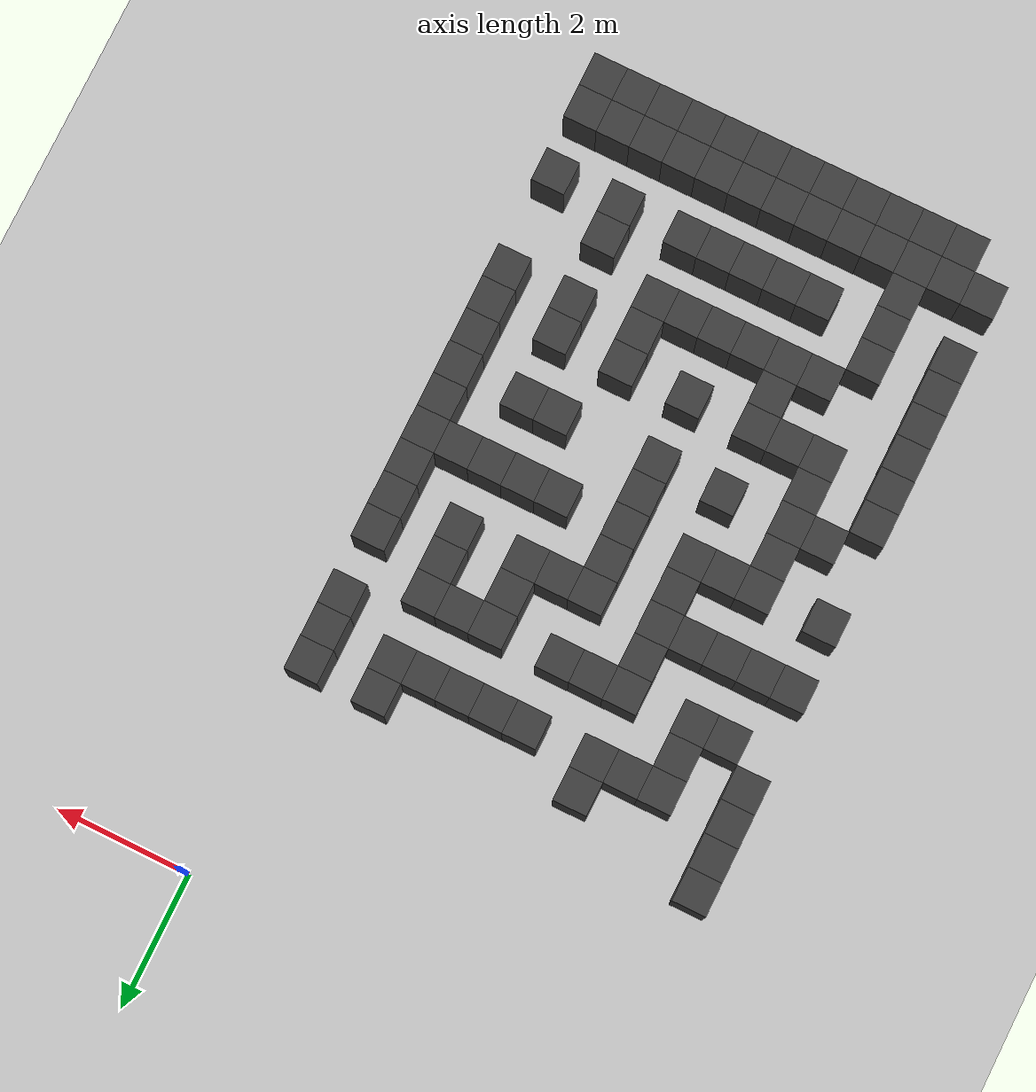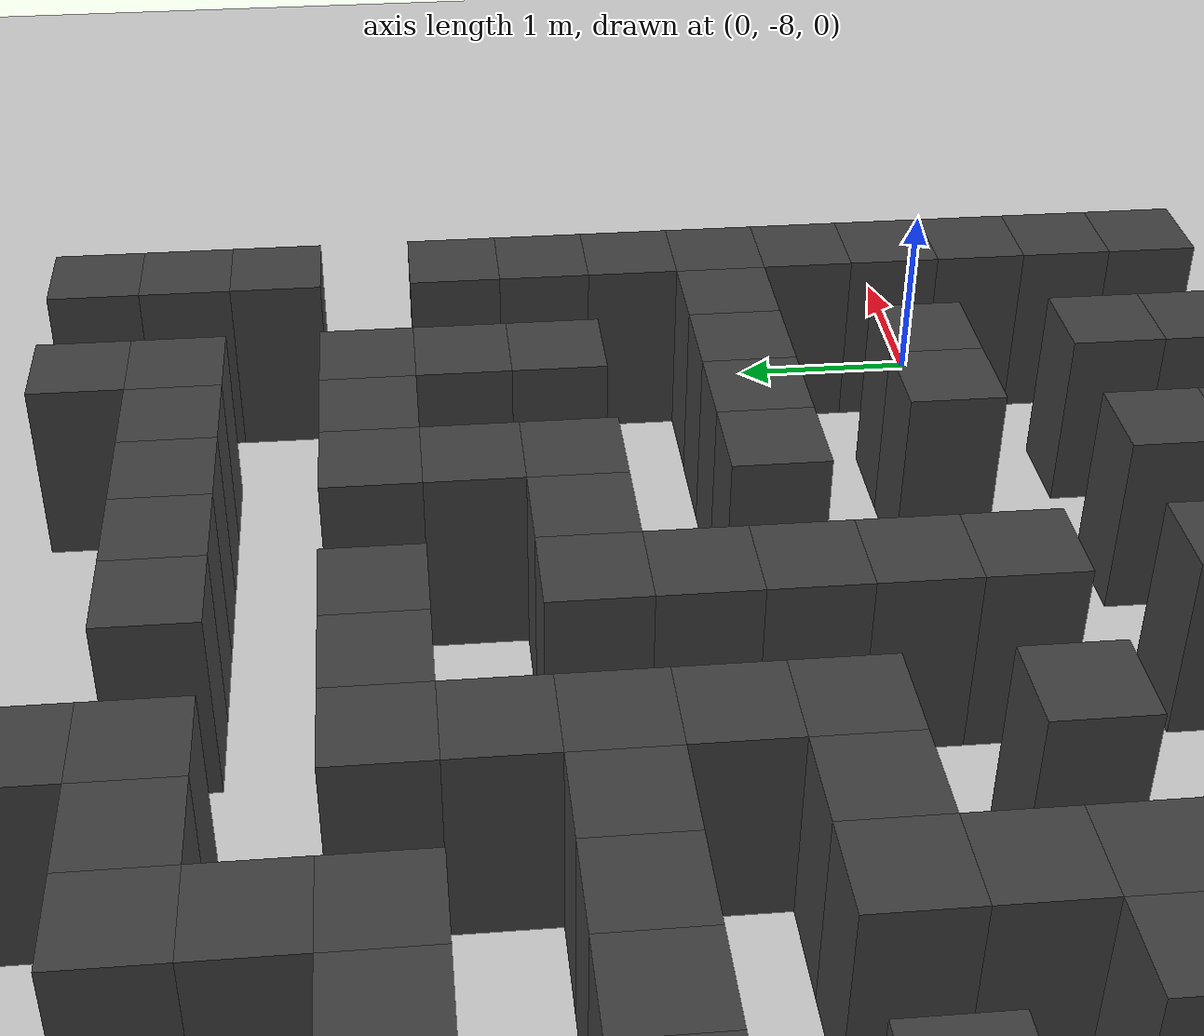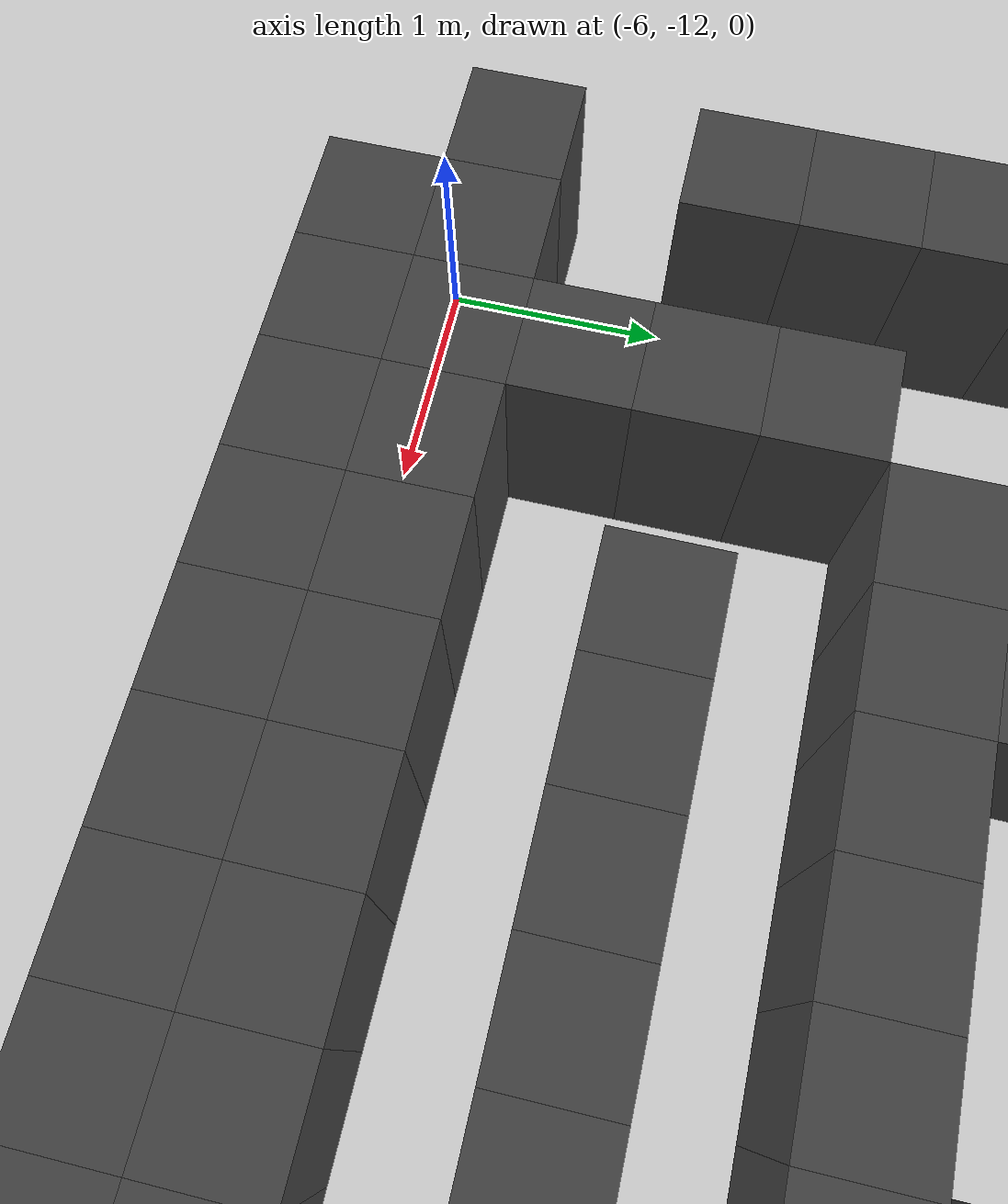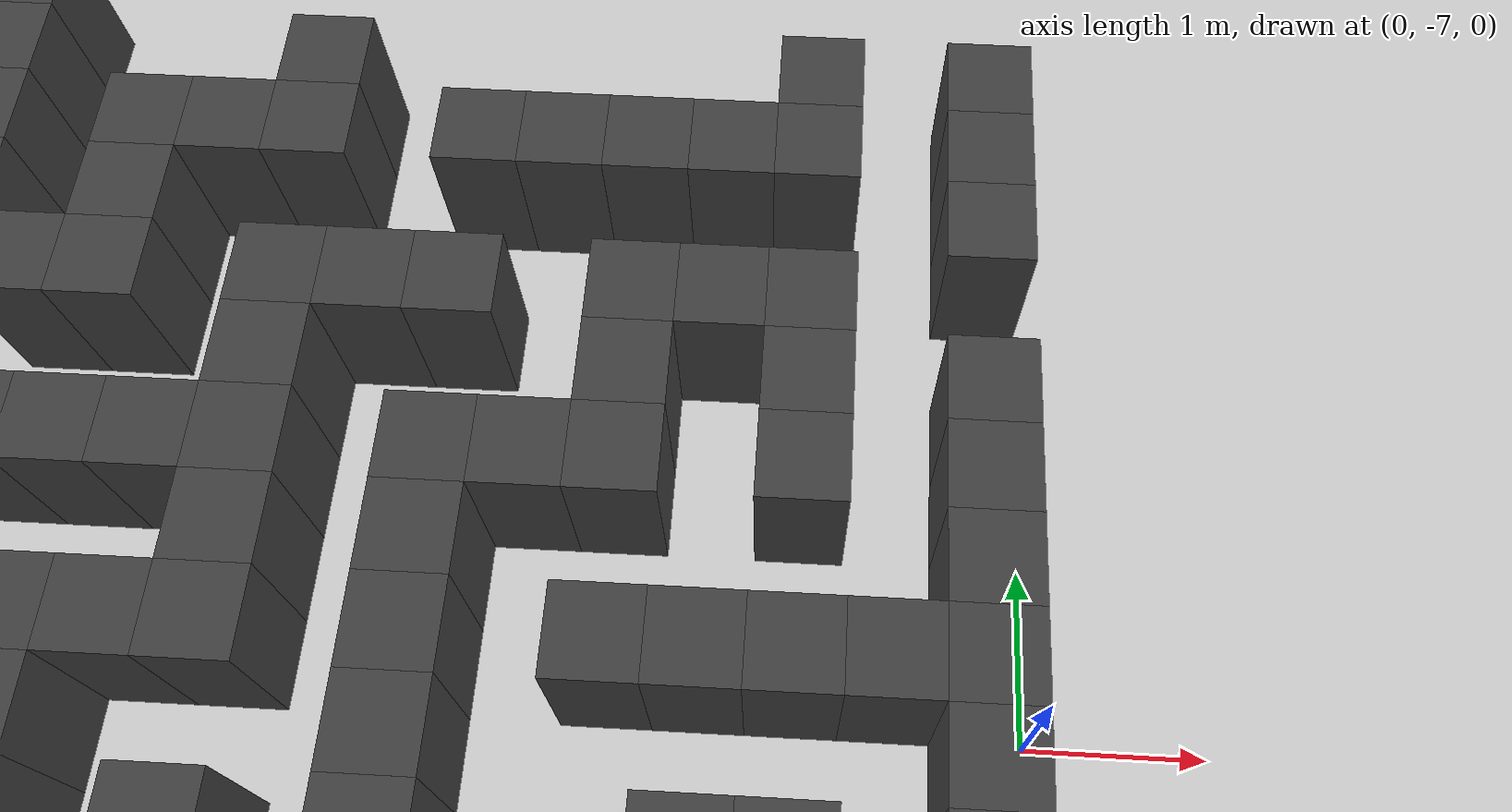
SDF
<sdf version="1.7">
 <world name="map_16603">
  <model name="ground_plane">
   <static>true</static>
   <link name="link">
    <collision name="collision">
     <geometry><plane><normal>0 0 1</normal><size>200 200</size></plane></geometry>
    </collision>
    <visual name="visual">
     <geometry><plane><normal>0 0 1</normal><size>200 200</size></plane></geometry>
     <material><ambient>0.8 0.8 0.8 1</ambient><diffuse>0.8 0.8 0.8 1</diffuse></material>
    </visual>
   </link>
  </model>
  <model name="maze_environment">
   <static>true</static>
   <link name="wall_737">
    <pose>-6.250 -2.750 0.500 0 0 0</pose>
    <collision name="col"><geometry><box><size>0.5 0.5 1.0</size></box></geometry></collision>
    <visual name="vis">
     <geometry><box><size>0.5 0.5 1.0</size></box></geometry>
     <material><ambient>0.15 0.15 0.15 1</ambient><diffuse>0.25 0.25 0.25 1</diffuse></material>
    </visual>
   </link>
   <link name="wall_769">
    <pose>-6.250 -3.250 0.500 0 0 0</pose>
    <collision name="col"><geometry><box><size>0.5 0.5 1.0</size></box></geometry></collision>
    <visual name="vis">
     <geometry><box><size>0.5 0.5 1.0</size></box></geometry>
     <material><ambient>0.15 0.15 0.15 1</ambient><diffuse>0.25 0.25 0.25 1</diffuse></material>
    </visual>
   </link>
   <link name="wall_770">
    <pose>-4.250 -3.250 0.500 0 0 0</pose>
    <collision name="col"><geometry><box><size>0.5 0.5 1.0</size></box></geometry></collision>
    <visual name="vis">
     <geometry><box><size>0.5 0.5 1.0</size></box></geometry>
     <material><ambient>0.15 0.15 0.15 1</ambient><diffuse>0.25 0.25 0.25 1</diffuse></material>
    </visual>
   </link>
   <link name="wall_771">
    <pose>-1.250 -3.250 0.500 0 0 0</pose>
    <collision name="col"><geometry><box><size>0.5 0.5 1.0</size></box></geometry></collision>
    <visual name="vis">
     <geometry><box><size>0.5 0.5 1.0</size></box></geometry>
     <material><ambient>0.15 0.15 0.15 1</ambient><diffuse>0.25 0.25 0.25 1</diffuse></material>
    </visual>
   </link>
   <link name="wall_772">
    <pose>-0.250 -3.250 0.500 0 0 0</pose>
    <collision name="col"><geometry><box><size>0.5 0.5 1.0</size></box></geometry></collision>
    <visual name="vis">
     <geometry><box><size>0.5 0.5 1.0</size></box></geometry>
     <material><ambient>0.15 0.15 0.15 1</ambient><diffuse>0.25 0.25 0.25 1</diffuse></material>
    </visual>
   </link>
   <link name="wall_783">
    <pose>-6.250 -3.750 0.500 0 0 0</pose>
    <collision name="col"><geometry><box><size>0.5 0.5 1.0</size></box></geometry></collision>
    <visual name="vis">
     <geometry><box><size>0.5 0.5 1.0</size></box></geometry>
     <material><ambient>0.15 0.15 0.15 1</ambient><diffuse>0.25 0.25 0.25 1</diffuse></material>
    </visual>
   </link>
   <link name="wall_784">
    <pose>-5.250 -3.750 0.500 0 0 0</pose>
    <collision name="col"><geometry><box><size>0.5 0.5 1.0</size></box></geometry></collision>
    <visual name="vis">
     <geometry><box><size>0.5 0.5 1.0</size></box></geometry>
     <material><ambient>0.15 0.15 0.15 1</ambient><diffuse>0.25 0.25 0.25 1</diffuse></material>
    </visual>
   </link>
   <link name="wall_785">
    <pose>-4.750 -3.750 0.500 0 0 0</pose>
    <collision name="col"><geometry><box><size>0.5 0.5 1.0</size></box></geometry></collision>
    <visual name="vis">
     <geometry><box><size>0.5 0.5 1.0</size></box></geometry>
     <material><ambient>0.15 0.15 0.15 1</ambient><diffuse>0.25 0.25 0.25 1</diffuse></material>
    </visual>
   </link>
   <link name="wall_786">
    <pose>-4.250 -3.750 0.500 0 0 0</pose>
    <collision name="col"><geometry><box><size>0.5 0.5 1.0</size></box></geometry></collision>
    <visual name="vis">
     <geometry><box><size>0.5 0.5 1.0</size></box></geometry>
     <material><ambient>0.15 0.15 0.15 1</ambient><diffuse>0.25 0.25 0.25 1</diffuse></material>
    </visual>
   </link>
   <link name="wall_787">
    <pose>-3.250 -3.750 0.500 0 0 0</pose>
    <collision name="col"><geometry><box><size>0.5 0.5 1.0</size></box></geometry></collision>
    <visual name="vis">
     <geometry><box><size>0.5 0.5 1.0</size></box></geometry>
     <material><ambient>0.15 0.15 0.15 1</ambient><diffuse>0.25 0.25 0.25 1</diffuse></material>
    </visual>
   </link>
   <link name="wall_788">
    <pose>-2.750 -3.750 0.500 0 0 0</pose>
    <collision name="col"><geometry><box><size>0.5 0.5 1.0</size></box></geometry></collision>
    <visual name="vis">
     <geometry><box><size>0.5 0.5 1.0</size></box></geometry>
     <material><ambient>0.15 0.15 0.15 1</ambient><diffuse>0.25 0.25 0.25 1</diffuse></material>
    </visual>
   </link>
   <link name="wall_789">
    <pose>-2.250 -3.750 0.500 0 0 0</pose>
    <collision name="col"><geometry><box><size>0.5 0.5 1.0</size></box></geometry></collision>
    <visual name="vis">
     <geometry><box><size>0.5 0.5 1.0</size></box></geometry>
     <material><ambient>0.15 0.15 0.15 1</ambient><diffuse>0.25 0.25 0.25 1</diffuse></material>
    </visual>
   </link>
   <link name="wall_790">
    <pose>-1.750 -3.750 0.500 0 0 0</pose>
    <collision name="col"><geometry><box><size>0.5 0.5 1.0</size></box></geometry></collision>
    <visual name="vis">
     <geometry><box><size>0.5 0.5 1.0</size></box></geometry>
     <material><ambient>0.15 0.15 0.15 1</ambient><diffuse>0.25 0.25 0.25 1</diffuse></material>
    </visual>
   </link>
   <link name="wall_791">
    <pose>-1.250 -3.750 0.500 0 0 0</pose>
    <collision name="col"><geometry><box><size>0.5 0.5 1.0</size></box></geometry></collision>
    <visual name="vis">
     <geometry><box><size>0.5 0.5 1.0</size></box></geometry>
     <material><ambient>0.15 0.15 0.15 1</ambient><diffuse>0.25 0.25 0.25 1</diffuse></material>
    </visual>
   </link>
   <link name="wall_792">
    <pose>-0.250 -3.750 0.500 0 0 0</pose>
    <collision name="col"><geometry><box><size>0.5 0.5 1.0</size></box></geometry></collision>
    <visual name="vis">
     <geometry><box><size>0.5 0.5 1.0</size></box></geometry>
     <material><ambient>0.15 0.15 0.15 1</ambient><diffuse>0.25 0.25 0.25 1</diffuse></material>
    </visual>
   </link>
   <link name="wall_815">
    <pose>-6.250 -4.250 0.500 0 0 0</pose>
    <collision name="col"><geometry><box><size>0.5 0.5 1.0</size></box></geometry></collision>
    <visual name="vis">
     <geometry><box><size>0.5 0.5 1.0</size></box></geometry>
     <material><ambient>0.15 0.15 0.15 1</ambient><diffuse>0.25 0.25 0.25 1</diffuse></material>
    </visual>
   </link>
   <link name="wall_816">
    <pose>-5.250 -4.250 0.500 0 0 0</pose>
    <collision name="col"><geometry><box><size>0.5 0.5 1.0</size></box></geometry></collision>
    <visual name="vis">
     <geometry><box><size>0.5 0.5 1.0</size></box></geometry>
     <material><ambient>0.15 0.15 0.15 1</ambient><diffuse>0.25 0.25 0.25 1</diffuse></material>
    </visual>
   </link>
   <link name="wall_817">
    <pose>-0.250 -4.250 0.500 0 0 0</pose>
    <collision name="col"><geometry><box><size>0.5 0.5 1.0</size></box></geometry></collision>
    <visual name="vis">
     <geometry><box><size>0.5 0.5 1.0</size></box></geometry>
     <material><ambient>0.15 0.15 0.15 1</ambient><diffuse>0.25 0.25 0.25 1</diffuse></material>
    </visual>
   </link>
   <link name="wall_834">
    <pose>-5.750 -4.750 0.500 0 0 0</pose>
    <collision name="col"><geometry><box><size>0.5 0.5 1.0</size></box></geometry></collision>
    <visual name="vis">
     <geometry><box><size>0.5 0.5 1.0</size></box></geometry>
     <material><ambient>0.15 0.15 0.15 1</ambient><diffuse>0.25 0.25 0.25 1</diffuse></material>
    </visual>
   </link>
   <link name="wall_835">
    <pose>-5.250 -4.750 0.500 0 0 0</pose>
    <collision name="col"><geometry><box><size>0.5 0.5 1.0</size></box></geometry></collision>
    <visual name="vis">
     <geometry><box><size>0.5 0.5 1.0</size></box></geometry>
     <material><ambient>0.15 0.15 0.15 1</ambient><diffuse>0.25 0.25 0.25 1</diffuse></material>
    </visual>
   </link>
   <link name="wall_836">
    <pose>-4.250 -4.750 0.500 0 0 0</pose>
    <collision name="col"><geometry><box><size>0.5 0.5 1.0</size></box></geometry></collision>
    <visual name="vis">
     <geometry><box><size>0.5 0.5 1.0</size></box></geometry>
     <material><ambient>0.15 0.15 0.15 1</ambient><diffuse>0.25 0.25 0.25 1</diffuse></material>
    </visual>
   </link>
   <link name="wall_837">
    <pose>-3.750 -4.750 0.500 0 0 0</pose>
    <collision name="col"><geometry><box><size>0.5 0.5 1.0</size></box></geometry></collision>
    <visual name="vis">
     <geometry><box><size>0.5 0.5 1.0</size></box></geometry>
     <material><ambient>0.15 0.15 0.15 1</ambient><diffuse>0.25 0.25 0.25 1</diffuse></material>
    </visual>
   </link>
   <link name="wall_838">
    <pose>-3.250 -4.750 0.500 0 0 0</pose>
    <collision name="col"><geometry><box><size>0.5 0.5 1.0</size></box></geometry></collision>
    <visual name="vis">
     <geometry><box><size>0.5 0.5 1.0</size></box></geometry>
     <material><ambient>0.15 0.15 0.15 1</ambient><diffuse>0.25 0.25 0.25 1</diffuse></material>
    </visual>
   </link>
   <link name="wall_839">
    <pose>-2.250 -4.750 0.500 0 0 0</pose>
    <collision name="col"><geometry><box><size>0.5 0.5 1.0</size></box></geometry></collision>
    <visual name="vis">
     <geometry><box><size>0.5 0.5 1.0</size></box></geometry>
     <material><ambient>0.15 0.15 0.15 1</ambient><diffuse>0.25 0.25 0.25 1</diffuse></material>
    </visual>
   </link>
   <link name="wall_840">
    <pose>-1.750 -4.750 0.500 0 0 0</pose>
    <collision name="col"><geometry><box><size>0.5 0.5 1.0</size></box></geometry></collision>
    <visual name="vis">
     <geometry><box><size>0.5 0.5 1.0</size></box></geometry>
     <material><ambient>0.15 0.15 0.15 1</ambient><diffuse>0.25 0.25 0.25 1</diffuse></material>
    </visual>
   </link>
   <link name="wall_841">
    <pose>-1.250 -4.750 0.500 0 0 0</pose>
    <collision name="col"><geometry><box><size>0.5 0.5 1.0</size></box></geometry></collision>
    <visual name="vis">
     <geometry><box><size>0.5 0.5 1.0</size></box></geometry>
     <material><ambient>0.15 0.15 0.15 1</ambient><diffuse>0.25 0.25 0.25 1</diffuse></material>
    </visual>
   </link>
   <link name="wall_861">
    <pose>-4.250 -5.250 0.500 0 0 0</pose>
    <collision name="col"><geometry><box><size>0.5 0.5 1.0</size></box></geometry></collision>
    <visual name="vis">
     <geometry><box><size>0.5 0.5 1.0</size></box></geometry>
     <material><ambient>0.15 0.15 0.15 1</ambient><diffuse>0.25 0.25 0.25 1</diffuse></material>
    </visual>
   </link>
   <link name="wall_862">
    <pose>-2.250 -5.250 0.500 0 0 0</pose>
    <collision name="col"><geometry><box><size>0.5 0.5 1.0</size></box></geometry></collision>
    <visual name="vis">
     <geometry><box><size>0.5 0.5 1.0</size></box></geometry>
     <material><ambient>0.15 0.15 0.15 1</ambient><diffuse>0.25 0.25 0.25 1</diffuse></material>
    </visual>
   </link>
   <link name="wall_863">
    <pose>-1.250 -5.250 0.500 0 0 0</pose>
    <collision name="col"><geometry><box><size>0.5 0.5 1.0</size></box></geometry></collision>
    <visual name="vis">
     <geometry><box><size>0.5 0.5 1.0</size></box></geometry>
     <material><ambient>0.15 0.15 0.15 1</ambient><diffuse>0.25 0.25 0.25 1</diffuse></material>
    </visual>
   </link>
   <link name="wall_864">
    <pose>-0.250 -5.250 0.500 0 0 0</pose>
    <collision name="col"><geometry><box><size>0.5 0.5 1.0</size></box></geometry></collision>
    <visual name="vis">
     <geometry><box><size>0.5 0.5 1.0</size></box></geometry>
     <material><ambient>0.15 0.15 0.15 1</ambient><diffuse>0.25 0.25 0.25 1</diffuse></material>
    </visual>
   </link>
   <link name="wall_879">
    <pose>-6.250 -5.750 0.500 0 0 0</pose>
    <collision name="col"><geometry><box><size>0.5 0.5 1.0</size></box></geometry></collision>
    <visual name="vis">
     <geometry><box><size>0.5 0.5 1.0</size></box></geometry>
     <material><ambient>0.15 0.15 0.15 1</ambient><diffuse>0.25 0.25 0.25 1</diffuse></material>
    </visual>
   </link>
   <link name="wall_880">
    <pose>-5.750 -5.750 0.500 0 0 0</pose>
    <collision name="col"><geometry><box><size>0.5 0.5 1.0</size></box></geometry></collision>
    <visual name="vis">
     <geometry><box><size>0.5 0.5 1.0</size></box></geometry>
     <material><ambient>0.15 0.15 0.15 1</ambient><diffuse>0.25 0.25 0.25 1</diffuse></material>
    </visual>
   </link>
   <link name="wall_881">
    <pose>-5.250 -5.750 0.500 0 0 0</pose>
    <collision name="col"><geometry><box><size>0.5 0.5 1.0</size></box></geometry></collision>
    <visual name="vis">
     <geometry><box><size>0.5 0.5 1.0</size></box></geometry>
     <material><ambient>0.15 0.15 0.15 1</ambient><diffuse>0.25 0.25 0.25 1</diffuse></material>
    </visual>
   </link>
   <link name="wall_882">
    <pose>-4.750 -5.750 0.500 0 0 0</pose>
    <collision name="col"><geometry><box><size>0.5 0.5 1.0</size></box></geometry></collision>
    <visual name="vis">
     <geometry><box><size>0.5 0.5 1.0</size></box></geometry>
     <material><ambient>0.15 0.15 0.15 1</ambient><diffuse>0.25 0.25 0.25 1</diffuse></material>
    </visual>
   </link>
   <link name="wall_883">
    <pose>-4.250 -5.750 0.500 0 0 0</pose>
    <collision name="col"><geometry><box><size>0.5 0.5 1.0</size></box></geometry></collision>
    <visual name="vis">
     <geometry><box><size>0.5 0.5 1.0</size></box></geometry>
     <material><ambient>0.15 0.15 0.15 1</ambient><diffuse>0.25 0.25 0.25 1</diffuse></material>
    </visual>
   </link>
   <link name="wall_884">
    <pose>-3.250 -5.750 0.500 0 0 0</pose>
    <collision name="col"><geometry><box><size>0.5 0.5 1.0</size></box></geometry></collision>
    <visual name="vis">
     <geometry><box><size>0.5 0.5 1.0</size></box></geometry>
     <material><ambient>0.15 0.15 0.15 1</ambient><diffuse>0.25 0.25 0.25 1</diffuse></material>
    </visual>
   </link>
   <link name="wall_885">
    <pose>-2.750 -5.750 0.500 0 0 0</pose>
    <collision name="col"><geometry><box><size>0.5 0.5 1.0</size></box></geometry></collision>
    <visual name="vis">
     <geometry><box><size>0.5 0.5 1.0</size></box></geometry>
     <material><ambient>0.15 0.15 0.15 1</ambient><diffuse>0.25 0.25 0.25 1</diffuse></material>
    </visual>
   </link>
   <link name="wall_886">
    <pose>-2.250 -5.750 0.500 0 0 0</pose>
    <collision name="col"><geometry><box><size>0.5 0.5 1.0</size></box></geometry></collision>
    <visual name="vis">
     <geometry><box><size>0.5 0.5 1.0</size></box></geometry>
     <material><ambient>0.15 0.15 0.15 1</ambient><diffuse>0.25 0.25 0.25 1</diffuse></material>
    </visual>
   </link>
   <link name="wall_887">
    <pose>-1.250 -5.750 0.500 0 0 0</pose>
    <collision name="col"><geometry><box><size>0.5 0.5 1.0</size></box></geometry></collision>
    <visual name="vis">
     <geometry><box><size>0.5 0.5 1.0</size></box></geometry>
     <material><ambient>0.15 0.15 0.15 1</ambient><diffuse>0.25 0.25 0.25 1</diffuse></material>
    </visual>
   </link>
   <link name="wall_888">
    <pose>-0.250 -5.750 0.500 0 0 0</pose>
    <collision name="col"><geometry><box><size>0.5 0.5 1.0</size></box></geometry></collision>
    <visual name="vis">
     <geometry><box><size>0.5 0.5 1.0</size></box></geometry>
     <material><ambient>0.15 0.15 0.15 1</ambient><diffuse>0.25 0.25 0.25 1</diffuse></material>
    </visual>
   </link>
   <link name="wall_910">
    <pose>-4.250 -6.250 0.500 0 0 0</pose>
    <collision name="col"><geometry><box><size>0.5 0.5 1.0</size></box></geometry></collision>
    <visual name="vis">
     <geometry><box><size>0.5 0.5 1.0</size></box></geometry>
     <material><ambient>0.15 0.15 0.15 1</ambient><diffuse>0.25 0.25 0.25 1</diffuse></material>
    </visual>
   </link>
   <link name="wall_911">
    <pose>-3.250 -6.250 0.500 0 0 0</pose>
    <collision name="col"><geometry><box><size>0.5 0.5 1.0</size></box></geometry></collision>
    <visual name="vis">
     <geometry><box><size>0.5 0.5 1.0</size></box></geometry>
     <material><ambient>0.15 0.15 0.15 1</ambient><diffuse>0.25 0.25 0.25 1</diffuse></material>
    </visual>
   </link>
   <link name="wall_912">
    <pose>-0.250 -6.250 0.500 0 0 0</pose>
    <collision name="col"><geometry><box><size>0.5 0.5 1.0</size></box></geometry></collision>
    <visual name="vis">
     <geometry><box><size>0.5 0.5 1.0</size></box></geometry>
     <material><ambient>0.15 0.15 0.15 1</ambient><diffuse>0.25 0.25 0.25 1</diffuse></material>
    </visual>
   </link>
   <link name="wall_931">
    <pose>-6.250 -6.750 0.500 0 0 0</pose>
    <collision name="col"><geometry><box><size>0.5 0.5 1.0</size></box></geometry></collision>
    <visual name="vis">
     <geometry><box><size>0.5 0.5 1.0</size></box></geometry>
     <material><ambient>0.15 0.15 0.15 1</ambient><diffuse>0.25 0.25 0.25 1</diffuse></material>
    </visual>
   </link>
   <link name="wall_932">
    <pose>-5.250 -6.750 0.500 0 0 0</pose>
    <collision name="col"><geometry><box><size>0.5 0.5 1.0</size></box></geometry></collision>
    <visual name="vis">
     <geometry><box><size>0.5 0.5 1.0</size></box></geometry>
     <material><ambient>0.15 0.15 0.15 1</ambient><diffuse>0.25 0.25 0.25 1</diffuse></material>
    </visual>
   </link>
   <link name="wall_933">
    <pose>-4.750 -6.750 0.500 0 0 0</pose>
    <collision name="col"><geometry><box><size>0.5 0.5 1.0</size></box></geometry></collision>
    <visual name="vis">
     <geometry><box><size>0.5 0.5 1.0</size></box></geometry>
     <material><ambient>0.15 0.15 0.15 1</ambient><diffuse>0.25 0.25 0.25 1</diffuse></material>
    </visual>
   </link>
   <link name="wall_934">
    <pose>-4.250 -6.750 0.500 0 0 0</pose>
    <collision name="col"><geometry><box><size>0.5 0.5 1.0</size></box></geometry></collision>
    <visual name="vis">
     <geometry><box><size>0.5 0.5 1.0</size></box></geometry>
     <material><ambient>0.15 0.15 0.15 1</ambient><diffuse>0.25 0.25 0.25 1</diffuse></material>
    </visual>
   </link>
   <link name="wall_935">
    <pose>-3.250 -6.750 0.500 0 0 0</pose>
    <collision name="col"><geometry><box><size>0.5 0.5 1.0</size></box></geometry></collision>
    <visual name="vis">
     <geometry><box><size>0.5 0.5 1.0</size></box></geometry>
     <material><ambient>0.15 0.15 0.15 1</ambient><diffuse>0.25 0.25 0.25 1</diffuse></material>
    </visual>
   </link>
   <link name="wall_936">
    <pose>-2.250 -6.750 0.500 0 0 0</pose>
    <collision name="col"><geometry><box><size>0.5 0.5 1.0</size></box></geometry></collision>
    <visual name="vis">
     <geometry><box><size>0.5 0.5 1.0</size></box></geometry>
     <material><ambient>0.15 0.15 0.15 1</ambient><diffuse>0.25 0.25 0.25 1</diffuse></material>
    </visual>
   </link>
   <link name="wall_937">
    <pose>-1.750 -6.750 0.500 0 0 0</pose>
    <collision name="col"><geometry><box><size>0.5 0.5 1.0</size></box></geometry></collision>
    <visual name="vis">
     <geometry><box><size>0.5 0.5 1.0</size></box></geometry>
     <material><ambient>0.15 0.15 0.15 1</ambient><diffuse>0.25 0.25 0.25 1</diffuse></material>
    </visual>
   </link>
   <link name="wall_938">
    <pose>-1.250 -6.750 0.500 0 0 0</pose>
    <collision name="col"><geometry><box><size>0.5 0.5 1.0</size></box></geometry></collision>
    <visual name="vis">
     <geometry><box><size>0.5 0.5 1.0</size></box></geometry>
     <material><ambient>0.15 0.15 0.15 1</ambient><diffuse>0.25 0.25 0.25 1</diffuse></material>
    </visual>
   </link>
   <link name="wall_939">
    <pose>-0.750 -6.750 0.500 0 0 0</pose>
    <collision name="col"><geometry><box><size>0.5 0.5 1.0</size></box></geometry></collision>
    <visual name="vis">
     <geometry><box><size>0.5 0.5 1.0</size></box></geometry>
     <material><ambient>0.15 0.15 0.15 1</ambient><diffuse>0.25 0.25 0.25 1</diffuse></material>
    </visual>
   </link>
   <link name="wall_940">
    <pose>-0.250 -6.750 0.500 0 0 0</pose>
    <collision name="col"><geometry><box><size>0.5 0.5 1.0</size></box></geometry></collision>
    <visual name="vis">
     <geometry><box><size>0.5 0.5 1.0</size></box></geometry>
     <material><ambient>0.15 0.15 0.15 1</ambient><diffuse>0.25 0.25 0.25 1</diffuse></material>
    </visual>
   </link>
   <link name="wall_960">
    <pose>-5.250 -7.250 0.500 0 0 0</pose>
    <collision name="col"><geometry><box><size>0.5 0.5 1.0</size></box></geometry></collision>
    <visual name="vis">
     <geometry><box><size>0.5 0.5 1.0</size></box></geometry>
     <material><ambient>0.15 0.15 0.15 1</ambient><diffuse>0.25 0.25 0.25 1</diffuse></material>
    </visual>
   </link>
   <link name="wall_961">
    <pose>-3.250 -7.250 0.500 0 0 0</pose>
    <collision name="col"><geometry><box><size>0.5 0.5 1.0</size></box></geometry></collision>
    <visual name="vis">
     <geometry><box><size>0.5 0.5 1.0</size></box></geometry>
     <material><ambient>0.15 0.15 0.15 1</ambient><diffuse>0.25 0.25 0.25 1</diffuse></material>
    </visual>
   </link>
   <link name="wall_962">
    <pose>-0.250 -7.250 0.500 0 0 0</pose>
    <collision name="col"><geometry><box><size>0.5 0.5 1.0</size></box></geometry></collision>
    <visual name="vis">
     <geometry><box><size>0.5 0.5 1.0</size></box></geometry>
     <material><ambient>0.15 0.15 0.15 1</ambient><diffuse>0.25 0.25 0.25 1</diffuse></material>
    </visual>
   </link>
   <link name="wall_977">
    <pose>-5.750 -7.750 0.500 0 0 0</pose>
    <collision name="col"><geometry><box><size>0.5 0.5 1.0</size></box></geometry></collision>
    <visual name="vis">
     <geometry><box><size>0.5 0.5 1.0</size></box></geometry>
     <material><ambient>0.15 0.15 0.15 1</ambient><diffuse>0.25 0.25 0.25 1</diffuse></material>
    </visual>
   </link>
   <link name="wall_978">
    <pose>-5.250 -7.750 0.500 0 0 0</pose>
    <collision name="col"><geometry><box><size>0.5 0.5 1.0</size></box></geometry></collision>
    <visual name="vis">
     <geometry><box><size>0.5 0.5 1.0</size></box></geometry>
     <material><ambient>0.15 0.15 0.15 1</ambient><diffuse>0.25 0.25 0.25 1</diffuse></material>
    </visual>
   </link>
   <link name="wall_979">
    <pose>-4.250 -7.750 0.500 0 0 0</pose>
    <collision name="col"><geometry><box><size>0.5 0.5 1.0</size></box></geometry></collision>
    <visual name="vis">
     <geometry><box><size>0.5 0.5 1.0</size></box></geometry>
     <material><ambient>0.15 0.15 0.15 1</ambient><diffuse>0.25 0.25 0.25 1</diffuse></material>
    </visual>
   </link>
   <link name="wall_980">
    <pose>-3.250 -7.750 0.500 0 0 0</pose>
    <collision name="col"><geometry><box><size>0.5 0.5 1.0</size></box></geometry></collision>
    <visual name="vis">
     <geometry><box><size>0.5 0.5 1.0</size></box></geometry>
     <material><ambient>0.15 0.15 0.15 1</ambient><diffuse>0.25 0.25 0.25 1</diffuse></material>
    </visual>
   </link>
   <link name="wall_981">
    <pose>-1.750 -7.750 0.500 0 0 0</pose>
    <collision name="col"><geometry><box><size>0.5 0.5 1.0</size></box></geometry></collision>
    <visual name="vis">
     <geometry><box><size>0.5 0.5 1.0</size></box></geometry>
     <material><ambient>0.15 0.15 0.15 1</ambient><diffuse>0.25 0.25 0.25 1</diffuse></material>
    </visual>
   </link>
   <link name="wall_982">
    <pose>-1.250 -7.750 0.500 0 0 0</pose>
    <collision name="col"><geometry><box><size>0.5 0.5 1.0</size></box></geometry></collision>
    <visual name="vis">
     <geometry><box><size>0.5 0.5 1.0</size></box></geometry>
     <material><ambient>0.15 0.15 0.15 1</ambient><diffuse>0.25 0.25 0.25 1</diffuse></material>
    </visual>
   </link>
   <link name="wall_983">
    <pose>-0.250 -7.750 0.500 0 0 0</pose>
    <collision name="col"><geometry><box><size>0.5 0.5 1.0</size></box></geometry></collision>
    <visual name="vis">
     <geometry><box><size>0.5 0.5 1.0</size></box></geometry>
     <material><ambient>0.15 0.15 0.15 1</ambient><diffuse>0.25 0.25 0.25 1</diffuse></material>
    </visual>
   </link>
   <link name="wall_1005">
    <pose>-6.250 -8.250 0.500 0 0 0</pose>
    <collision name="col"><geometry><box><size>0.5 0.5 1.0</size></box></geometry></collision>
    <visual name="vis">
     <geometry><box><size>0.5 0.5 1.0</size></box></geometry>
     <material><ambient>0.15 0.15 0.15 1</ambient><diffuse>0.25 0.25 0.25 1</diffuse></material>
    </visual>
   </link>
   <link name="wall_1006">
    <pose>-5.250 -8.250 0.500 0 0 0</pose>
    <collision name="col"><geometry><box><size>0.5 0.5 1.0</size></box></geometry></collision>
    <visual name="vis">
     <geometry><box><size>0.5 0.5 1.0</size></box></geometry>
     <material><ambient>0.15 0.15 0.15 1</ambient><diffuse>0.25 0.25 0.25 1</diffuse></material>
    </visual>
   </link>
   <link name="wall_1007">
    <pose>-0.250 -8.250 0.500 0 0 0</pose>
    <collision name="col"><geometry><box><size>0.5 0.5 1.0</size></box></geometry></collision>
    <visual name="vis">
     <geometry><box><size>0.5 0.5 1.0</size></box></geometry>
     <material><ambient>0.15 0.15 0.15 1</ambient><diffuse>0.25 0.25 0.25 1</diffuse></material>
    </visual>
   </link>
   <link name="wall_1020">
    <pose>-6.250 -8.750 0.500 0 0 0</pose>
    <collision name="col"><geometry><box><size>0.5 0.5 1.0</size></box></geometry></collision>
    <visual name="vis">
     <geometry><box><size>0.5 0.5 1.0</size></box></geometry>
     <material><ambient>0.15 0.15 0.15 1</ambient><diffuse>0.25 0.25 0.25 1</diffuse></material>
    </visual>
   </link>
   <link name="wall_1021">
    <pose>-5.250 -8.750 0.500 0 0 0</pose>
    <collision name="col"><geometry><box><size>0.5 0.5 1.0</size></box></geometry></collision>
    <visual name="vis">
     <geometry><box><size>0.5 0.5 1.0</size></box></geometry>
     <material><ambient>0.15 0.15 0.15 1</ambient><diffuse>0.25 0.25 0.25 1</diffuse></material>
    </visual>
   </link>
   <link name="wall_1022">
    <pose>-4.750 -8.750 0.500 0 0 0</pose>
    <collision name="col"><geometry><box><size>0.5 0.5 1.0</size></box></geometry></collision>
    <visual name="vis">
     <geometry><box><size>0.5 0.5 1.0</size></box></geometry>
     <material><ambient>0.15 0.15 0.15 1</ambient><diffuse>0.25 0.25 0.25 1</diffuse></material>
    </visual>
   </link>
   <link name="wall_1023">
    <pose>-4.250 -8.750 0.500 0 0 0</pose>
    <collision name="col"><geometry><box><size>0.5 0.5 1.0</size></box></geometry></collision>
    <visual name="vis">
     <geometry><box><size>0.5 0.5 1.0</size></box></geometry>
     <material><ambient>0.15 0.15 0.15 1</ambient><diffuse>0.25 0.25 0.25 1</diffuse></material>
    </visual>
   </link>
   <link name="wall_1024">
    <pose>-3.250 -8.750 0.500 0 0 0</pose>
    <collision name="col"><geometry><box><size>0.5 0.5 1.0</size></box></geometry></collision>
    <visual name="vis">
     <geometry><box><size>0.5 0.5 1.0</size></box></geometry>
     <material><ambient>0.15 0.15 0.15 1</ambient><diffuse>0.25 0.25 0.25 1</diffuse></material>
    </visual>
   </link>
   <link name="wall_1025">
    <pose>-2.250 -8.750 0.500 0 0 0</pose>
    <collision name="col"><geometry><box><size>0.5 0.5 1.0</size></box></geometry></collision>
    <visual name="vis">
     <geometry><box><size>0.5 0.5 1.0</size></box></geometry>
     <material><ambient>0.15 0.15 0.15 1</ambient><diffuse>0.25 0.25 0.25 1</diffuse></material>
    </visual>
   </link>
   <link name="wall_1026">
    <pose>-1.250 -8.750 0.500 0 0 0</pose>
    <collision name="col"><geometry><box><size>0.5 0.5 1.0</size></box></geometry></collision>
    <visual name="vis">
     <geometry><box><size>0.5 0.5 1.0</size></box></geometry>
     <material><ambient>0.15 0.15 0.15 1</ambient><diffuse>0.25 0.25 0.25 1</diffuse></material>
    </visual>
   </link>
   <link name="wall_1027">
    <pose>-0.250 -8.750 0.500 0 0 0</pose>
    <collision name="col"><geometry><box><size>0.5 0.5 1.0</size></box></geometry></collision>
    <visual name="vis">
     <geometry><box><size>0.5 0.5 1.0</size></box></geometry>
     <material><ambient>0.15 0.15 0.15 1</ambient><diffuse>0.25 0.25 0.25 1</diffuse></material>
    </visual>
   </link>
   <link name="wall_1050">
    <pose>-6.250 -9.250 0.500 0 0 0</pose>
    <collision name="col"><geometry><box><size>0.5 0.5 1.0</size></box></geometry></collision>
    <visual name="vis">
     <geometry><box><size>0.5 0.5 1.0</size></box></geometry>
     <material><ambient>0.15 0.15 0.15 1</ambient><diffuse>0.25 0.25 0.25 1</diffuse></material>
    </visual>
   </link>
   <link name="wall_1051">
    <pose>-4.250 -9.250 0.500 0 0 0</pose>
    <collision name="col"><geometry><box><size>0.5 0.5 1.0</size></box></geometry></collision>
    <visual name="vis">
     <geometry><box><size>0.5 0.5 1.0</size></box></geometry>
     <material><ambient>0.15 0.15 0.15 1</ambient><diffuse>0.25 0.25 0.25 1</diffuse></material>
    </visual>
   </link>
   <link name="wall_1052">
    <pose>-2.250 -9.250 0.500 0 0 0</pose>
    <collision name="col"><geometry><box><size>0.5 0.5 1.0</size></box></geometry></collision>
    <visual name="vis">
     <geometry><box><size>0.5 0.5 1.0</size></box></geometry>
     <material><ambient>0.15 0.15 0.15 1</ambient><diffuse>0.25 0.25 0.25 1</diffuse></material>
    </visual>
   </link>
   <link name="wall_1053">
    <pose>-1.250 -9.250 0.500 0 0 0</pose>
    <collision name="col"><geometry><box><size>0.5 0.5 1.0</size></box></geometry></collision>
    <visual name="vis">
     <geometry><box><size>0.5 0.5 1.0</size></box></geometry>
     <material><ambient>0.15 0.15 0.15 1</ambient><diffuse>0.25 0.25 0.25 1</diffuse></material>
    </visual>
   </link>
   <link name="wall_1054">
    <pose>-0.250 -9.250 0.500 0 0 0</pose>
    <collision name="col"><geometry><box><size>0.5 0.5 1.0</size></box></geometry></collision>
    <visual name="vis">
     <geometry><box><size>0.5 0.5 1.0</size></box></geometry>
     <material><ambient>0.15 0.15 0.15 1</ambient><diffuse>0.25 0.25 0.25 1</diffuse></material>
    </visual>
   </link>
   <link name="wall_1072">
    <pose>-6.250 -9.750 0.500 0 0 0</pose>
    <collision name="col"><geometry><box><size>0.5 0.5 1.0</size></box></geometry></collision>
    <visual name="vis">
     <geometry><box><size>0.5 0.5 1.0</size></box></geometry>
     <material><ambient>0.15 0.15 0.15 1</ambient><diffuse>0.25 0.25 0.25 1</diffuse></material>
    </visual>
   </link>
   <link name="wall_1073">
    <pose>-4.750 -9.750 0.500 0 0 0</pose>
    <collision name="col"><geometry><box><size>0.5 0.5 1.0</size></box></geometry></collision>
    <visual name="vis">
     <geometry><box><size>0.5 0.5 1.0</size></box></geometry>
     <material><ambient>0.15 0.15 0.15 1</ambient><diffuse>0.25 0.25 0.25 1</diffuse></material>
    </visual>
   </link>
   <link name="wall_1074">
    <pose>-4.250 -9.750 0.500 0 0 0</pose>
    <collision name="col"><geometry><box><size>0.5 0.5 1.0</size></box></geometry></collision>
    <visual name="vis">
     <geometry><box><size>0.5 0.5 1.0</size></box></geometry>
     <material><ambient>0.15 0.15 0.15 1</ambient><diffuse>0.25 0.25 0.25 1</diffuse></material>
    </visual>
   </link>
   <link name="wall_1075">
    <pose>-3.750 -9.750 0.500 0 0 0</pose>
    <collision name="col"><geometry><box><size>0.5 0.5 1.0</size></box></geometry></collision>
    <visual name="vis">
     <geometry><box><size>0.5 0.5 1.0</size></box></geometry>
     <material><ambient>0.15 0.15 0.15 1</ambient><diffuse>0.25 0.25 0.25 1</diffuse></material>
    </visual>
   </link>
   <link name="wall_1076">
    <pose>-3.250 -9.750 0.500 0 0 0</pose>
    <collision name="col"><geometry><box><size>0.5 0.5 1.0</size></box></geometry></collision>
    <visual name="vis">
     <geometry><box><size>0.5 0.5 1.0</size></box></geometry>
     <material><ambient>0.15 0.15 0.15 1</ambient><diffuse>0.25 0.25 0.25 1</diffuse></material>
    </visual>
   </link>
   <link name="wall_1077">
    <pose>-2.750 -9.750 0.500 0 0 0</pose>
    <collision name="col"><geometry><box><size>0.5 0.5 1.0</size></box></geometry></collision>
    <visual name="vis">
     <geometry><box><size>0.5 0.5 1.0</size></box></geometry>
     <material><ambient>0.15 0.15 0.15 1</ambient><diffuse>0.25 0.25 0.25 1</diffuse></material>
    </visual>
   </link>
   <link name="wall_1078">
    <pose>-2.250 -9.750 0.500 0 0 0</pose>
    <collision name="col"><geometry><box><size>0.5 0.5 1.0</size></box></geometry></collision>
    <visual name="vis">
     <geometry><box><size>0.5 0.5 1.0</size></box></geometry>
     <material><ambient>0.15 0.15 0.15 1</ambient><diffuse>0.25 0.25 0.25 1</diffuse></material>
    </visual>
   </link>
   <link name="wall_1095">
    <pose>-6.250 -10.250 0.500 0 0 0</pose>
    <collision name="col"><geometry><box><size>0.5 0.5 1.0</size></box></geometry></collision>
    <visual name="vis">
     <geometry><box><size>0.5 0.5 1.0</size></box></geometry>
     <material><ambient>0.15 0.15 0.15 1</ambient><diffuse>0.25 0.25 0.25 1</diffuse></material>
    </visual>
   </link>
   <link name="wall_1096">
    <pose>-5.250 -10.250 0.500 0 0 0</pose>
    <collision name="col"><geometry><box><size>0.5 0.5 1.0</size></box></geometry></collision>
    <visual name="vis">
     <geometry><box><size>0.5 0.5 1.0</size></box></geometry>
     <material><ambient>0.15 0.15 0.15 1</ambient><diffuse>0.25 0.25 0.25 1</diffuse></material>
    </visual>
   </link>
   <link name="wall_1097">
    <pose>-1.250 -10.250 0.500 0 0 0</pose>
    <collision name="col"><geometry><box><size>0.5 0.5 1.0</size></box></geometry></collision>
    <visual name="vis">
     <geometry><box><size>0.5 0.5 1.0</size></box></geometry>
     <material><ambient>0.15 0.15 0.15 1</ambient><diffuse>0.25 0.25 0.25 1</diffuse></material>
    </visual>
   </link>
   <link name="wall_1113">
    <pose>-6.250 -10.750 0.500 0 0 0</pose>
    <collision name="col"><geometry><box><size>0.5 0.5 1.0</size></box></geometry></collision>
    <visual name="vis">
     <geometry><box><size>0.5 0.5 1.0</size></box></geometry>
     <material><ambient>0.15 0.15 0.15 1</ambient><diffuse>0.25 0.25 0.25 1</diffuse></material>
    </visual>
   </link>
   <link name="wall_1114">
    <pose>-5.250 -10.750 0.500 0 0 0</pose>
    <collision name="col"><geometry><box><size>0.5 0.5 1.0</size></box></geometry></collision>
    <visual name="vis">
     <geometry><box><size>0.5 0.5 1.0</size></box></geometry>
     <material><ambient>0.15 0.15 0.15 1</ambient><diffuse>0.25 0.25 0.25 1</diffuse></material>
    </visual>
   </link>
   <link name="wall_1115">
    <pose>-4.250 -10.750 0.500 0 0 0</pose>
    <collision name="col"><geometry><box><size>0.5 0.5 1.0</size></box></geometry></collision>
    <visual name="vis">
     <geometry><box><size>0.5 0.5 1.0</size></box></geometry>
     <material><ambient>0.15 0.15 0.15 1</ambient><diffuse>0.25 0.25 0.25 1</diffuse></material>
    </visual>
   </link>
   <link name="wall_1116">
    <pose>-3.750 -10.750 0.500 0 0 0</pose>
    <collision name="col"><geometry><box><size>0.5 0.5 1.0</size></box></geometry></collision>
    <visual name="vis">
     <geometry><box><size>0.5 0.5 1.0</size></box></geometry>
     <material><ambient>0.15 0.15 0.15 1</ambient><diffuse>0.25 0.25 0.25 1</diffuse></material>
    </visual>
   </link>
   <link name="wall_1117">
    <pose>-3.250 -10.750 0.500 0 0 0</pose>
    <collision name="col"><geometry><box><size>0.5 0.5 1.0</size></box></geometry></collision>
    <visual name="vis">
     <geometry><box><size>0.5 0.5 1.0</size></box></geometry>
     <material><ambient>0.15 0.15 0.15 1</ambient><diffuse>0.25 0.25 0.25 1</diffuse></material>
    </visual>
   </link>
   <link name="wall_1118">
    <pose>-2.750 -10.750 0.500 0 0 0</pose>
    <collision name="col"><geometry><box><size>0.5 0.5 1.0</size></box></geometry></collision>
    <visual name="vis">
     <geometry><box><size>0.5 0.5 1.0</size></box></geometry>
     <material><ambient>0.15 0.15 0.15 1</ambient><diffuse>0.25 0.25 0.25 1</diffuse></material>
    </visual>
   </link>
   <link name="wall_1119">
    <pose>-2.250 -10.750 0.500 0 0 0</pose>
    <collision name="col"><geometry><box><size>0.5 0.5 1.0</size></box></geometry></collision>
    <visual name="vis">
     <geometry><box><size>0.5 0.5 1.0</size></box></geometry>
     <material><ambient>0.15 0.15 0.15 1</ambient><diffuse>0.25 0.25 0.25 1</diffuse></material>
    </visual>
   </link>
   <link name="wall_1120">
    <pose>-1.250 -10.750 0.500 0 0 0</pose>
    <collision name="col"><geometry><box><size>0.5 0.5 1.0</size></box></geometry></collision>
    <visual name="vis">
     <geometry><box><size>0.5 0.5 1.0</size></box></geometry>
     <material><ambient>0.15 0.15 0.15 1</ambient><diffuse>0.25 0.25 0.25 1</diffuse></material>
    </visual>
   </link>
   <link name="wall_1121">
    <pose>-0.250 -10.750 0.500 0 0 0</pose>
    <collision name="col"><geometry><box><size>0.5 0.5 1.0</size></box></geometry></collision>
    <visual name="vis">
     <geometry><box><size>0.5 0.5 1.0</size></box></geometry>
     <material><ambient>0.15 0.15 0.15 1</ambient><diffuse>0.25 0.25 0.25 1</diffuse></material>
    </visual>
   </link>
   <link name="wall_1140">
    <pose>-5.250 -11.250 0.500 0 0 0</pose>
    <collision name="col"><geometry><box><size>0.5 0.5 1.0</size></box></geometry></collision>
    <visual name="vis">
     <geometry><box><size>0.5 0.5 1.0</size></box></geometry>
     <material><ambient>0.15 0.15 0.15 1</ambient><diffuse>0.25 0.25 0.25 1</diffuse></material>
    </visual>
   </link>
   <link name="wall_1157">
    <pose>-6.250 -11.750 0.500 0 0 0</pose>
    <collision name="col"><geometry><box><size>0.5 0.5 1.0</size></box></geometry></collision>
    <visual name="vis">
     <geometry><box><size>0.5 0.5 1.0</size></box></geometry>
     <material><ambient>0.15 0.15 0.15 1</ambient><diffuse>0.25 0.25 0.25 1</diffuse></material>
    </visual>
   </link>
   <link name="wall_1158">
    <pose>-5.750 -11.750 0.500 0 0 0</pose>
    <collision name="col"><geometry><box><size>0.5 0.5 1.0</size></box></geometry></collision>
    <visual name="vis">
     <geometry><box><size>0.5 0.5 1.0</size></box></geometry>
     <material><ambient>0.15 0.15 0.15 1</ambient><diffuse>0.25 0.25 0.25 1</diffuse></material>
    </visual>
   </link>
   <link name="wall_1159">
    <pose>-5.250 -11.750 0.500 0 0 0</pose>
    <collision name="col"><geometry><box><size>0.5 0.5 1.0</size></box></geometry></collision>
    <visual name="vis">
     <geometry><box><size>0.5 0.5 1.0</size></box></geometry>
     <material><ambient>0.15 0.15 0.15 1</ambient><diffuse>0.25 0.25 0.25 1</diffuse></material>
    </visual>
   </link>
   <link name="wall_1160">
    <pose>-4.750 -11.750 0.500 0 0 0</pose>
    <collision name="col"><geometry><box><size>0.5 0.5 1.0</size></box></geometry></collision>
    <visual name="vis">
     <geometry><box><size>0.5 0.5 1.0</size></box></geometry>
     <material><ambient>0.15 0.15 0.15 1</ambient><diffuse>0.25 0.25 0.25 1</diffuse></material>
    </visual>
   </link>
   <link name="wall_1161">
    <pose>-4.250 -11.750 0.500 0 0 0</pose>
    <collision name="col"><geometry><box><size>0.5 0.5 1.0</size></box></geometry></collision>
    <visual name="vis">
     <geometry><box><size>0.5 0.5 1.0</size></box></geometry>
     <material><ambient>0.15 0.15 0.15 1</ambient><diffuse>0.25 0.25 0.25 1</diffuse></material>
    </visual>
   </link>
   <link name="wall_1162">
    <pose>-3.750 -11.750 0.500 0 0 0</pose>
    <collision name="col"><geometry><box><size>0.5 0.5 1.0</size></box></geometry></collision>
    <visual name="vis">
     <geometry><box><size>0.5 0.5 1.0</size></box></geometry>
     <material><ambient>0.15 0.15 0.15 1</ambient><diffuse>0.25 0.25 0.25 1</diffuse></material>
    </visual>
   </link>
   <link name="wall_1163">
    <pose>-3.250 -11.750 0.500 0 0 0</pose>
    <collision name="col"><geometry><box><size>0.5 0.5 1.0</size></box></geometry></collision>
    <visual name="vis">
     <geometry><box><size>0.5 0.5 1.0</size></box></geometry>
     <material><ambient>0.15 0.15 0.15 1</ambient><diffuse>0.25 0.25 0.25 1</diffuse></material>
    </visual>
   </link>
   <link name="wall_1164">
    <pose>-2.750 -11.750 0.500 0 0 0</pose>
    <collision name="col"><geometry><box><size>0.5 0.5 1.0</size></box></geometry></collision>
    <visual name="vis">
     <geometry><box><size>0.5 0.5 1.0</size></box></geometry>
     <material><ambient>0.15 0.15 0.15 1</ambient><diffuse>0.25 0.25 0.25 1</diffuse></material>
    </visual>
   </link>
   <link name="wall_1165">
    <pose>-2.250 -11.750 0.500 0 0 0</pose>
    <collision name="col"><geometry><box><size>0.5 0.5 1.0</size></box></geometry></collision>
    <visual name="vis">
     <geometry><box><size>0.5 0.5 1.0</size></box></geometry>
     <material><ambient>0.15 0.15 0.15 1</ambient><diffuse>0.25 0.25 0.25 1</diffuse></material>
    </visual>
   </link>
   <link name="wall_1166">
    <pose>-1.750 -11.750 0.500 0 0 0</pose>
    <collision name="col"><geometry><box><size>0.5 0.5 1.0</size></box></geometry></collision>
    <visual name="vis">
     <geometry><box><size>0.5 0.5 1.0</size></box></geometry>
     <material><ambient>0.15 0.15 0.15 1</ambient><diffuse>0.25 0.25 0.25 1</diffuse></material>
    </visual>
   </link>
   <link name="wall_1167">
    <pose>-1.250 -11.750 0.500 0 0 0</pose>
    <collision name="col"><geometry><box><size>0.5 0.5 1.0</size></box></geometry></collision>
    <visual name="vis">
     <geometry><box><size>0.5 0.5 1.0</size></box></geometry>
     <material><ambient>0.15 0.15 0.15 1</ambient><diffuse>0.25 0.25 0.25 1</diffuse></material>
    </visual>
   </link>
   <link name="wall_1168">
    <pose>-0.750 -11.750 0.500 0 0 0</pose>
    <collision name="col"><geometry><box><size>0.5 0.5 1.0</size></box></geometry></collision>
    <visual name="vis">
     <geometry><box><size>0.5 0.5 1.0</size></box></geometry>
     <material><ambient>0.15 0.15 0.15 1</ambient><diffuse>0.25 0.25 0.25 1</diffuse></material>
    </visual>
   </link>
   <link name="wall_1169">
    <pose>-0.250 -11.750 0.500 0 0 0</pose>
    <collision name="col"><geometry><box><size>0.5 0.5 1.0</size></box></geometry></collision>
    <visual name="vis">
     <geometry><box><size>0.5 0.5 1.0</size></box></geometry>
     <material><ambient>0.15 0.15 0.15 1</ambient><diffuse>0.25 0.25 0.25 1</diffuse></material>
    </visual>
   </link>
   <link name="wall_1206">
    <pose>-5.750 -12.250 0.500 0 0 0</pose>
    <collision name="col"><geometry><box><size>0.5 0.5 1.0</size></box></geometry></collision>
    <visual name="vis">
     <geometry><box><size>0.5 0.5 1.0</size></box></geometry>
     <material><ambient>0.15 0.15 0.15 1</ambient><diffuse>0.25 0.25 0.25 1</diffuse></material>
    </visual>
   </link>
   <link name="wall_1207">
    <pose>-5.250 -12.250 0.500 0 0 0</pose>
    <collision name="col"><geometry><box><size>0.5 0.5 1.0</size></box></geometry></collision>
    <visual name="vis">
     <geometry><box><size>0.5 0.5 1.0</size></box></geometry>
     <material><ambient>0.15 0.15 0.15 1</ambient><diffuse>0.25 0.25 0.25 1</diffuse></material>
    </visual>
   </link>
   <link name="wall_1208">
    <pose>-4.750 -12.250 0.500 0 0 0</pose>
    <collision name="col"><geometry><box><size>0.5 0.5 1.0</size></box></geometry></collision>
    <visual name="vis">
     <geometry><box><size>0.5 0.5 1.0</size></box></geometry>
     <material><ambient>0.15 0.15 0.15 1</ambient><diffuse>0.25 0.25 0.25 1</diffuse></material>
    </visual>
   </link>
   <link name="wall_1209">
    <pose>-4.250 -12.250 0.500 0 0 0</pose>
    <collision name="col"><geometry><box><size>0.5 0.5 1.0</size></box></geometry></collision>
    <visual name="vis">
     <geometry><box><size>0.5 0.5 1.0</size></box></geometry>
     <material><ambient>0.15 0.15 0.15 1</ambient><diffuse>0.25 0.25 0.25 1</diffuse></material>
    </visual>
   </link>
   <link name="wall_1210">
    <pose>-3.750 -12.250 0.500 0 0 0</pose>
    <collision name="col"><geometry><box><size>0.5 0.5 1.0</size></box></geometry></collision>
    <visual name="vis">
     <geometry><box><size>0.5 0.5 1.0</size></box></geometry>
     <material><ambient>0.15 0.15 0.15 1</ambient><diffuse>0.25 0.25 0.25 1</diffuse></material>
    </visual>
   </link>
   <link name="wall_1211">
    <pose>-3.250 -12.250 0.500 0 0 0</pose>
    <collision name="col"><geometry><box><size>0.5 0.5 1.0</size></box></geometry></collision>
    <visual name="vis">
     <geometry><box><size>0.5 0.5 1.0</size></box></geometry>
     <material><ambient>0.15 0.15 0.15 1</ambient><diffuse>0.25 0.25 0.25 1</diffuse></material>
    </visual>
   </link>
   <link name="wall_1212">
    <pose>-2.750 -12.250 0.500 0 0 0</pose>
    <collision name="col"><geometry><box><size>0.5 0.5 1.0</size></box></geometry></collision>
    <visual name="vis">
     <geometry><box><size>0.5 0.5 1.0</size></box></geometry>
     <material><ambient>0.15 0.15 0.15 1</ambient><diffuse>0.25 0.25 0.25 1</diffuse></material>
    </visual>
   </link>
   <link name="wall_1213">
    <pose>-2.250 -12.250 0.500 0 0 0</pose>
    <collision name="col"><geometry><box><size>0.5 0.5 1.0</size></box></geometry></collision>
    <visual name="vis">
     <geometry><box><size>0.5 0.5 1.0</size></box></geometry>
     <material><ambient>0.15 0.15 0.15 1</ambient><diffuse>0.25 0.25 0.25 1</diffuse></material>
    </visual>
   </link>
   <link name="wall_1214">
    <pose>-1.750 -12.250 0.500 0 0 0</pose>
    <collision name="col"><geometry><box><size>0.5 0.5 1.0</size></box></geometry></collision>
    <visual name="vis">
     <geometry><box><size>0.5 0.5 1.0</size></box></geometry>
     <material><ambient>0.15 0.15 0.15 1</ambient><diffuse>0.25 0.25 0.25 1</diffuse></material>
    </visual>
   </link>
   <link name="wall_1215">
    <pose>-1.250 -12.250 0.500 0 0 0</pose>
    <collision name="col"><geometry><box><size>0.5 0.5 1.0</size></box></geometry></collision>
    <visual name="vis">
     <geometry><box><size>0.5 0.5 1.0</size></box></geometry>
     <material><ambient>0.15 0.15 0.15 1</ambient><diffuse>0.25 0.25 0.25 1</diffuse></material>
    </visual>
   </link>
   <link name="wall_1216">
    <pose>-0.750 -12.250 0.500 0 0 0</pose>
    <collision name="col"><geometry><box><size>0.5 0.5 1.0</size></box></geometry></collision>
    <visual name="vis">
     <geometry><box><size>0.5 0.5 1.0</size></box></geometry>
     <material><ambient>0.15 0.15 0.15 1</ambient><diffuse>0.25 0.25 0.25 1</diffuse></material>
    </visual>
   </link>
   <link name="wall_1217">
    <pose>-0.250 -12.250 0.500 0 0 0</pose>
    <collision name="col"><geometry><box><size>0.5 0.5 1.0</size></box></geometry></collision>
    <visual name="vis">
     <geometry><box><size>0.5 0.5 1.0</size></box></geometry>
     <material><ambient>0.15 0.15 0.15 1</ambient><diffuse>0.25 0.25 0.25 1</diffuse></material>
    </visual>
   </link>
  </model>
 </world>
</sdf>
